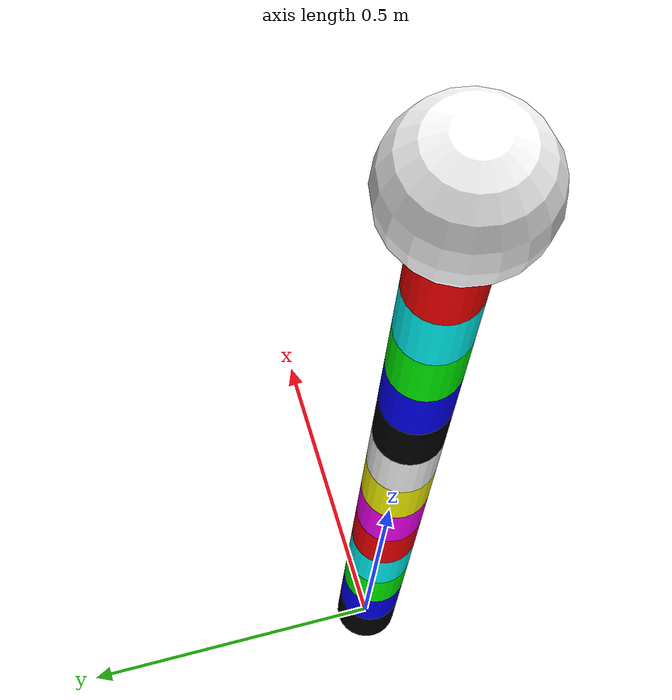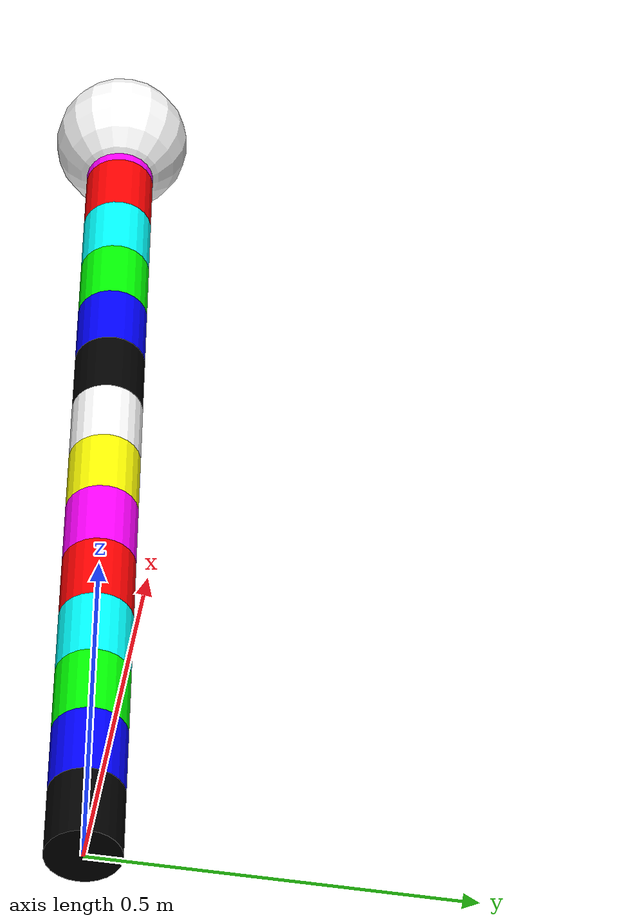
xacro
<?xml version="1.0" ?>
<robot name="snake" xmlns:xacro="http://ros.org/wiki/xacro">
  <xacro:property name="diameter" value="0.1"/>
  <xacro:property name="length" value="0.1"/>
  <material name="color_a">
    <color rgba="0 0 0 1"/>
  </material>
  <material name="color_b">
    <color rgba="0 0 1 1"/>
  </material>
  <material name="color_c">
    <color rgba="0 1 0 1"/>
  </material>
  <material name="color_d">
    <color rgba="0 1 1 1"/>
  </material>
  <material name="color_e">
    <color rgba="1 0 0 1"/>
  </material>
  <material name="color_f">
    <color rgba="1 0 1 1"/>
  </material>
  <material name="color_g">
    <color rgba="1 1 0 1"/>
  </material>
  <material name="color_h">
    <color rgba="1 1 1 1"/>
  </material>
  <link name="link0">
    <visual>
      <origin xyz="0 0 ${length/2}"/>
      <geometry>
        <cylinder length="${length}" radius="${diameter/2}"/>
      </geometry>
      <material name="color_a"/>
    </visual>
  </link>
  <link name="link1">
    <visual>
      <origin xyz="0 0 ${length/2}"/>
      <geometry>
        <cylinder length="${length}" radius="${diameter/2}"/>
      </geometry>
      <material name="color_b"/>
    </visual>
  </link>
  <link name="link2">
    <visual>
      <origin xyz="0 0 ${length/2}"/>
      <geometry>
        <cylinder length="${length}" radius="${diameter/2}"/>
      </geometry>
      <material name="color_c"/>
    </visual>
  </link>
  <link name="link3">
    <visual>
      <origin xyz="0 0 ${length/2}"/>
      <geometry>
        <cylinder length="${length}" radius="${diameter/2}"/>
      </geometry>
      <material name="color_d"/>
    </visual>
  </link>
  <link name="link4">
    <visual>
      <origin xyz="0 0 ${length/2}"/>
      <geometry>
        <cylinder length="${length}" radius="${diameter/2}"/>
      </geometry>
      <material name="color_e"/>
    </visual>
  </link>
  <link name="link5">
    <visual>
      <origin xyz="0 0 ${length/2}"/>
      <geometry>
        <cylinder length="${length}" radius="${diameter/2}"/>
      </geometry>
      <material name="color_f"/>
    </visual>
  </link>
  <link name="link6">
    <visual>
      <origin xyz="0 0 ${length/2}"/>
      <geometry>
        <cylinder length="${length}" radius="${diameter/2}"/>
      </geometry>
      <material name="color_g"/>
    </visual>
  </link>
  <link name="link7">
    <visual>
      <origin xyz="0 0 ${length/2}"/>
      <geometry>
        <cylinder length="${length}" radius="${diameter/2}"/>
      </geometry>
      <material name="color_h"/>
    </visual>
  </link>
  <link name="link8">
    <visual>
      <origin xyz="0 0 ${length/2}"/>
      <geometry>
        <cylinder length="${length}" radius="${diameter/2}"/>
      </geometry>
      <material name="color_a"/>
    </visual>
  </link>
  <link name="link9">
    <visual>
      <origin xyz="0 0 ${length/2}"/>
      <geometry>
        <cylinder length="${length}" radius="${diameter/2}"/>
      </geometry>
      <material name="color_b"/>
    </visual>
  </link>
  <link name="link10">
    <visual>
      <origin xyz="0 0 ${length/2}"/>
      <geometry>
        <cylinder length="${length}" radius="${diameter/2}"/>
      </geometry>
      <material name="color_c"/>
    </visual>
  </link>
  <link name="link11">
    <visual>
      <origin xyz="0 0 ${length/2}"/>
      <geometry>
        <cylinder length="${length}" radius="${diameter/2}"/>
      </geometry>
      <material name="color_d"/>
    </visual>
  </link>
  <link name="link12">
    <visual>
      <origin xyz="0 0 ${length/2}"/>
      <geometry>
        <cylinder length="${length}" radius="${diameter/2}"/>
      </geometry>
      <material name="color_e"/>
    </visual>
  </link>
  <link name="link13">
    <visual>
      <origin xyz="0 0 ${length/2}"/>
      <geometry>
        <cylinder length="${length}" radius="${diameter/2}"/>
      </geometry>
      <material name="color_f"/>
    </visual>
  </link>
  <joint name="joint0" type="revolute">
    <parent link="link0"/>
    <child link="link1"/>
    <axis xyz="1 0 0"/>
    <origin xyz="0 0 ${length}"/>
    <limit effort="100" lower="-${pi/4}" upper="${pi/4}" velocity="100"/>
  </joint>
  <joint name="joint1" type="revolute">
    <parent link="link1"/>
    <child link="link2"/>
    <axis xyz="0 1 0"/>
    <origin xyz="0 0 ${length}"/>
    <limit effort="100" lower="-${pi/4}" upper="${pi/4}" velocity="100"/>
  </joint>
  <joint name="joint2" type="revolute">
    <parent link="link2"/>
    <child link="link3"/>
    <axis xyz="1 0 0"/>
    <origin xyz="0 0 ${length}"/>
    <limit effort="100" lower="-${pi/4}" upper="${pi/4}" velocity="100"/>
  </joint>
  <joint name="joint3" type="revolute">
    <parent link="link3"/>
    <child link="link4"/>
    <axis xyz="0 1 0"/>
    <origin xyz="0 0 ${length}"/>
    <limit effort="100" lower="-${pi/4}" upper="${pi/4}" velocity="100"/>
  </joint>
  <joint name="joint4" type="revolute">
    <parent link="link4"/>
    <child link="link5"/>
    <axis xyz="1 0 0"/>
    <origin xyz="0 0 ${length}"/>
    <limit effort="100" lower="-${pi/4}" upper="${pi/4}" velocity="100"/>
  </joint>
  <joint name="joint5" type="revolute">
    <parent link="link5"/>
    <child link="link6"/>
    <axis xyz="0 1 0"/>
    <origin xyz="0 0 ${length}"/>
    <limit effort="100" lower="-${pi/4}" upper="${pi/4}" velocity="100"/>
  </joint>
  <joint name="joint6" type="revolute">
    <parent link="link6"/>
    <child link="link7"/>
    <axis xyz="1 0 0"/>
    <origin xyz="0 0 ${length}"/>
    <limit effort="100" lower="-${pi/4}" upper="${pi/4}" velocity="100"/>
  </joint>
  <joint name="joint7" type="revolute">
    <parent link="link7"/>
    <child link="link8"/>
    <axis xyz="0 1 0"/>
    <origin xyz="0 0 ${length}"/>
    <limit effort="100" lower="-${pi/4}" upper="${pi/4}" velocity="100"/>
  </joint>
  <joint name="joint8" type="revolute">
    <parent link="link8"/>
    <child link="link9"/>
    <axis xyz="1 0 0"/>
    <origin xyz="0 0 ${length}"/>
    <limit effort="100" lower="-${pi/4}" upper="${pi/4}" velocity="100"/>
  </joint>
  <joint name="joint9" type="revolute">
    <parent link="link9"/>
    <child link="link10"/>
    <axis xyz="0 1 0"/>
    <origin xyz="0 0 ${length}"/>
    <limit effort="100" lower="-${pi/4}" upper="${pi/4}" velocity="100"/>
  </joint>
  <joint name="joint10" type="revolute">
    <parent link="link10"/>
    <child link="link11"/>
    <axis xyz="1 0 0"/>
    <origin xyz="0 0 ${length}"/>
    <limit effort="100" lower="-${pi/4}" upper="${pi/4}" velocity="100"/>
  </joint>
  <joint name="joint11" type="revolute">
    <parent link="link11"/>
    <child link="link12"/>
    <axis xyz="0 1 0"/>
    <origin xyz="0 0 ${length}"/>
    <limit effort="100" lower="-${pi/4}" upper="${pi/4}" velocity="100"/>
  </joint>
  <joint name="joint12" type="revolute">
    <parent link="link12"/>
    <child link="link13"/>
    <axis xyz="1 0 0"/>
    <origin xyz="0 0 ${length}"/>
    <limit effort="100" lower="-${pi/4}" upper="${pi/4}" velocity="100"/>
  </joint>
  <material name="end_effector_material">
    <color rgba="1 1 1 1"/>
  </material>
  <link name="end_effector">
    <visual>
      <origin xyz="0 0 ${length}"/>
      <geometry>
        <sphere radius="0.1"/>
      </geometry>
      <material name="end_effector_material"/>
    </visual>
  </link>
  <joint name="joint_end_effector" type="fixed">
    <parent link="link13"/>
    <child link="end_effector"/>
    <limit effort="100" lower="-${pi/4}" upper="${pi/4}" velocity="100"/>
  </joint>
</robot>
